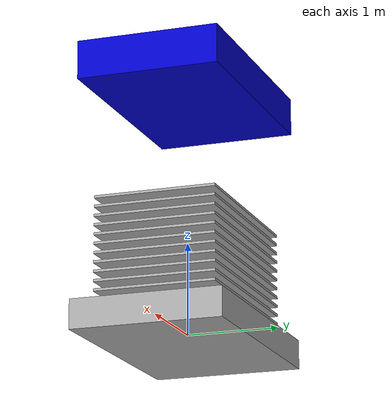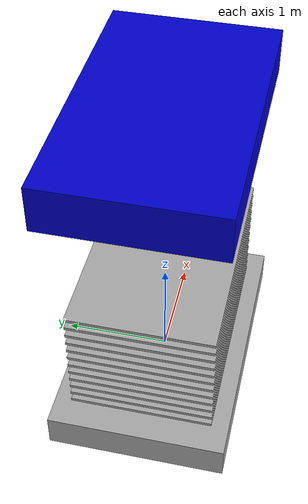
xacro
<?xml version="1.0"?>
<robot name="novalis" xmlns:xacro="http://www.ros.org/wiki/xacro">

  <!-- Part of the Model for the Novalis TX Spec
      Author: Olalekan Ogunmolu, August 2016
  -->

  <!-- General Properties -->
  <xacro:property name="M_PI" value="3.14159" />

  <!-- Novalis Properties -->
  <xacro:property name="base_seater_lth" value="2.584" />
  <xacro:property name="base_seater_thk" value="1.65" />
  <xacro:property name="base_seater_hgt" value="0.32" />
  <xacro:property name="cushion_separator_thk" value="1.33" />
  <xacro:property name="cushion_separator_lth" value="2.084" />
  <xacro:property name="cushion_separator_hgt" value="0.028" />
  <xacro:property name="collimator_thk" value="13.05" />
  <xacro:property name="novalis_rgba" value="0.662745 0.662745 0.662745 1" />
  <xacro:property name="bed_base_hgt" value="0.42"/>
  <xacro:property name="bed_base_lth" value="2.554" />
  <xacro:property name="bed_base_thk" value="1.55" />

  <!-- Derived Variables -->
  <material name="novalis_color" >
    <color rgba="${novalis_rgba}" />
  </material>

  <material name="blue">
    <color rgba="0 0 .8 1"/>
  </material>

  <material name="black">
    <color rgba="0 0 0 1"/>
  </material>

  <material name="white">
    <color rgba="1 1 1 1"/>
  </material>

  <!-- this is the 6-DOF bed -->
  <link name="base_link">
    <visual>
      <origin xyz="0 0 0" rpy="0 0 0" />
      <geometry>
        <box size="${base_seater_lth} ${base_seater_thk} ${base_seater_hgt}"/>
      </geometry>
      <material name="novalis_color"/>
      <origin xyz="0 0 0" rpy="0 0 0" />
    </visual>
    <collision>
      <geometry>
        <box size="${base_seater_lth} ${base_seater_thk} ${base_seater_hgt}"/>
      </geometry>
    </collision>
  </link>

  <xacro:macro name="cush_link" params="1 2 3 4 5 6 7 8" />

  <!-- cushion link 1 -->
  <link name="cush_link1">
    <visual>
      <origin xyz="0 0 0.1" rpy="0 0 0" />
      <geometry>
        <box size="${cushion_separator_lth} ${cushion_separator_thk} ${cushion_separator_hgt}"/>
      </geometry>
      <material name="novalis_color"/>
      <origin xyz="0 0 0.1" rpy="0 0 0" />
    </visual>
    <collision>
      <geometry>
        <box size="${cushion_separator_lth} ${cushion_separator_thk} ${cushion_separator_hgt}"/>
      </geometry>
      <origin xyz="0 0 0.1" rpy="0 0 0" />
    </collision>
  </link>

  <joint name="base_link_to_cush_link1" type="continuous">
    <parent link="base_link"/>
    <child link="cush_link1"/>
    <origin xyz="0 0 0" />
  </joint>

  <!--cushion  link 2 -->
  <link name="cush_link2">
    <visual>
      <origin xyz="0 0 0.2" rpy="0 0 0" />
      <geometry>
        <box size="${cushion_separator_lth} ${cushion_separator_thk} ${cushion_separator_hgt}"/>
      </geometry>
      <material name="novalis_color"/>
      <origin xyz="0 0 0.2" rpy="0 0 0" />
    </visual>
    <collision>
      <geometry>
        <box size="${cushion_separator_lth} ${cushion_separator_thk} ${cushion_separator_hgt}"/>
      </geometry>
      <origin xyz="0 0 0.2" rpy="0 0 0" />
    </collision>
  </link>

  <joint name="cush_link1_to_cush_link2" type="continuous">
    <parent link="cush_link1"/>
    <child link="cush_link2"/>
    <origin xyz="0 0 0" />
  </joint>

  <!-- cushion link 3 -->
  <link name="cush_link3">
    <visual>
      <origin xyz="0 0 0.3" rpy="0 0 0" />
      <geometry>
        <box size="${cushion_separator_lth} ${cushion_separator_thk} ${cushion_separator_hgt}"/>
      </geometry>
      <material name="novalis_color"/>
      <origin xyz="0 0 0.3" rpy="0 0 0" />
    </visual>
    <collision>
      <geometry>
        <box size="${cushion_separator_lth} ${cushion_separator_thk} ${cushion_separator_hgt}"/>
      </geometry>
      <origin xyz="0 0 0.3" rpy="0 0 0" />
    </collision>
  </link>

  <joint name="cush_link2_to_cush_link3" type="continuous">
    <parent link="cush_link2"/>
    <child link="cush_link3"/>
    <origin xyz="0 0 0" />
  </joint>

  <!--cushion  link 4 -->
  <link name="cush_link4">
    <visual>
      <origin xyz="0 0 0.4" rpy="0 0 0" />
      <geometry>
        <box size="${cushion_separator_lth} ${cushion_separator_thk} ${cushion_separator_hgt}"/>
      </geometry>
      <material name="novalis_color"/>
      <origin xyz="0 0 0.4" rpy="0 0 0" />
    </visual>
    <collision>
      <geometry>
        <box size="${cushion_separator_lth} ${cushion_separator_thk} ${cushion_separator_hgt}"/>
      </geometry>
      <origin xyz="0 0 0.4" rpy="0 0 0" />
    </collision>
  </link>

  <joint name="cush_link3_to_cush_link4" type="continuous">
    <parent link="cush_link3"/>
    <child link="cush_link4"/>
    <origin xyz="0 0 0" />
  </joint>

  <!--cushion  link 5 -->
  <link name="cush_link5">
    <visual>
      <origin xyz="0 0 0.5" rpy="0 0 0" />
      <geometry>
        <box size="${cushion_separator_lth} ${cushion_separator_thk} ${cushion_separator_hgt}"/>
      </geometry>
      <material name="novalis_color"/>
      <origin xyz="0 0 0.5" rpy="0 0 0" />
    </visual>
    <collision>
      <geometry>
        <box size="${cushion_separator_lth} ${cushion_separator_thk} ${cushion_separator_hgt}"/>
      </geometry>
      <origin xyz="0 0 0.5" rpy="0 0 0" />
    </collision>
  </link>

  <joint name="cush_link4_to_cush_link5" type="continuous">
    <parent link="cush_link4"/>
    <child link="cush_link5"/>
    <origin xyz="0 0 0" />
  </joint>

    <!--cushion  link 6 -->
  <link name="cush_link6">
    <visual>
      <origin xyz="0 0 0.6" rpy="0 0 0" />
      <geometry>
        <box size="${cushion_separator_lth} ${cushion_separator_thk} ${cushion_separator_hgt}"/>
      </geometry>
      <material name="novalis_color"/>
      <origin xyz="0 0 0.6" rpy="0 0 0" />
    </visual>
    <collision>
      <geometry>
        <box size="${cushion_separator_lth} ${cushion_separator_thk} ${cushion_separator_hgt}"/>
      </geometry>
      <origin xyz="0 0 0.6" rpy="0 0 0" />
    </collision>
  </link>

  <joint name="cush_link5_to_cush_link6" type="continuous">
    <parent link="cush_link5"/>
    <child link="cush_link6"/>
    <origin xyz="0 0 0" />
  </joint>

    <!--cushion  link7 -->
  <link name="cush_link7">
    <visual>
      <origin xyz="0 0 0.7" rpy="0 0 0" />
      <geometry>
        <box size="${cushion_separator_lth} ${cushion_separator_thk} ${cushion_separator_hgt}"/>
      </geometry>
      <material name="novalis_color"/>
      <origin xyz="0 0 0.7" rpy="0 0 0" />
    </visual>
    <collision>
      <geometry>
        <box size="${cushion_separator_lth} ${cushion_separator_thk} ${cushion_separator_hgt}"/>
      </geometry>
      <origin xyz="0 0 0.7" rpy="0 0 0" />
    </collision>
  </link>

  <joint name="cush_link6_to_cush_link7" type="continuous">
    <parent link="cush_link6"/>
    <child link="cush_link7"/>
    <origin xyz="0 0 0" />
  </joint>

    <!--cushion  link8 -->
  <link name="cush_link8">
    <visual>
      <origin xyz="0 0 0.8" rpy="0 0 0" />
      <geometry>
        <box size="${cushion_separator_lth} ${cushion_separator_thk} ${cushion_separator_hgt}"/>
      </geometry>
      <material name="novalis_color"/>
      <origin xyz="0 0 0.8" rpy="0 0 0" />
    </visual>
    <collision>
      <geometry>
        <box size="${cushion_separator_lth} ${cushion_separator_thk} ${cushion_separator_hgt}"/>
      </geometry>
      <origin xyz="0 0 0.8" rpy="0 0 0" />
    </collision>
  </link>

  <joint name="cush_link7_to_cush_link8" type="continuous">
    <parent link="cush_link7"/>
    <child link="cush_link8"/>
    <origin xyz="0 0 0" />
  </joint>

    <!--cushion link9 -->
  <link name="cush_link9">
    <visual>
      <origin xyz="0 0 0.9" rpy="0 0 0" />
      <geometry>
        <box size="${cushion_separator_lth} ${cushion_separator_thk} ${cushion_separator_hgt}"/>
      </geometry>
      <material name="novalis_color"/>
      <origin xyz="0 0 0.9" rpy="0 0 0" />
    </visual>
    <collision>
      <geometry>
        <box size="${cushion_separator_lth} ${cushion_separator_thk} ${cushion_separator_hgt}"/>
      </geometry>
      <origin xyz="0 0 0.9" rpy="0 0 0" />
    </collision>
  </link>

  <joint name="cush_link8_to_cush_link9" type="continuous">
    <parent link="cush_link8"/>
    <child link="cush_link9"/>
    <origin xyz="0 0 0" />
  </joint>

    <!--cushion link10 -->
  <link name="cush_link10">
    <visual>
      <origin xyz="0 0 1.0" rpy="0 0 0" />
      <geometry>
        <box size="${cushion_separator_lth} ${cushion_separator_thk} ${cushion_separator_hgt}"/>
      </geometry>
      <material name="novalis_color"/>
      <origin xyz="0 0 1.0" rpy="0 0 0" />
    </visual>
    <collision>
      <geometry>
        <box size="${cushion_separator_lth} ${cushion_separator_thk} ${cushion_separator_hgt}"/>
      </geometry>
      <origin xyz="0 0 1.0" rpy="0 0 0" />
    </collision>
  </link>

  <joint name="cush_link9_to_cush_link10" type="continuous">
      <parent link="cush_link9"/>
      <child link="cush_link10"/>
      <origin xyz="0 0 0" />
    </joint>

      <!--cushion link11 -->
    <link name="cush_link11">
      <visual>"
      <origin xyz="0 0 1.1" rpy="0 0 0" />
      <geometry>
        <box size="${cushion_separator_lth} ${cushion_separator_thk} ${cushion_separator_hgt}"/>
      </geometry>
      <material name="novalis_color"/>
      <origin xyz="0 0 1.1" rpy="0 0 0" />
    </visual>
    <collision>
      <geometry>
        <box size="${cushion_separator_lth} ${cushion_separator_thk} ${cushion_separator_hgt}"/>
      </geometry>
      <origin xyz="0 0 1.1" rpy="0 0 0" />
    </collision>
  </link>

  <joint name="cush_link10_to_cush_link11" type="continuous">
    <parent link="cush_link10"/>
    <child link="cush_link11"/>
    <origin xyz="0 0 0" />
  </joint>

    <!--cushion link12-->
  <link name="cush_link12">
    <visual>
      <origin xyz="0 0 1.2" rpy="0 0 0" />
      <geometry>
        <box size="${cushion_separator_lth} ${cushion_separator_thk} ${cushion_separator_hgt}"/>
      </geometry>
      <material name="novalis_color"/>
      <origin xyz="0 0 1.2" rpy="0 0 0" />
    </visual>
    <collision>
      <geometry>
        <box size="${cushion_separator_lth} ${cushion_separator_thk} ${cushion_separator_hgt}"/>
      </geometry>
      <origin xyz="0 0 1.2" rpy="0 0 0" />
    </collision>
  </link>

  <joint name="cush_link11_to_cush_link12" type="continuous">
    <parent link="cush_link11"/>
    <child link="cush_link12"/>
    <origin xyz="0 0 0" />
  </joint>

    <!--cushion link13-->
  <link name="cush_link13">
    <visual>
      <origin xyz="0 0 1.3" rpy="0 0 0" />
      <geometry>
        <box size="${cushion_separator_lth} ${cushion_separator_thk} ${cushion_separator_hgt}"/>
      </geometry>
      <material name="novalis_color"/>
      <origin xyz="0 0 1.3" rpy="0 0 0" />
    </visual>
    <collision>
      <geometry>
        <box size="${cushion_separator_lth} ${cushion_separator_thk} ${cushion_separator_hgt}"/>
      </geometry>
      <origin xyz="0 0 1.3" rpy="0 0 0" />
    </collision>
  </link>

  <joint name="cush_link12_to_cush_link13" type="continuous">
    <parent link="cush_link12"/>
    <child link="cush_link13"/>
    <origin xyz="0 0 0" />x
  </joint>

  <link name="bed_base">
    <visual>
      <origin xyz="0 0 1.4" rpy=" 0 0 0" />
      <geometry>
        <box size="${bed_base_lth} ${bed_base_thk} ${bed_base_hgt}"/>
      </geometry>
      <material name="blue" />
      <origin xyz="0 0 1.4" rpy=" 0 0 0" />
    </visual>
    <collision>
      <geometry>
        <box size="${bed_base_lth} ${bed_base_thk} ${bed_base_hgt}" />
      </geometry>
    </collision>
  </link>

  <joint name="bed_base_to_cush_link13" type="fixed">
    <parent link="cush_link13"/>
    <child  link="bed_base"/>
    <origin xyz="0 0 1.35"/>
  </joint>

</robot>
